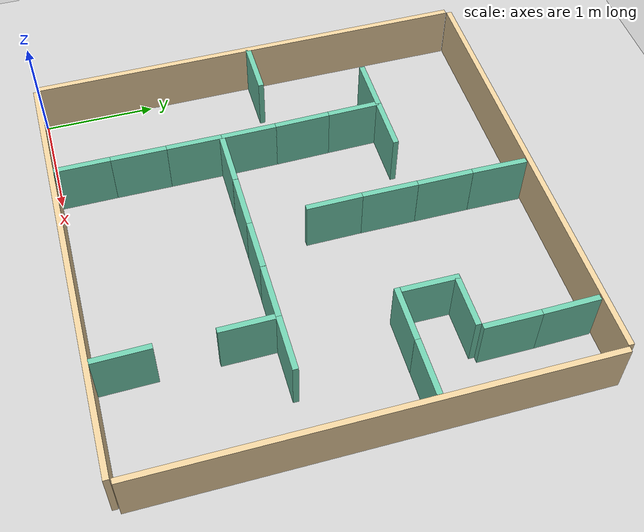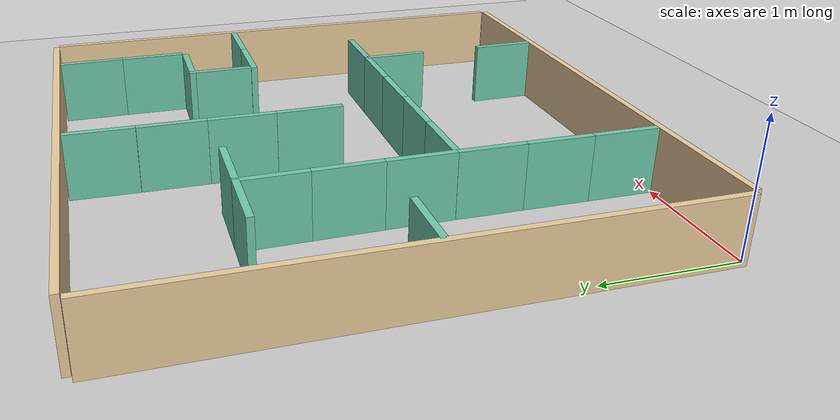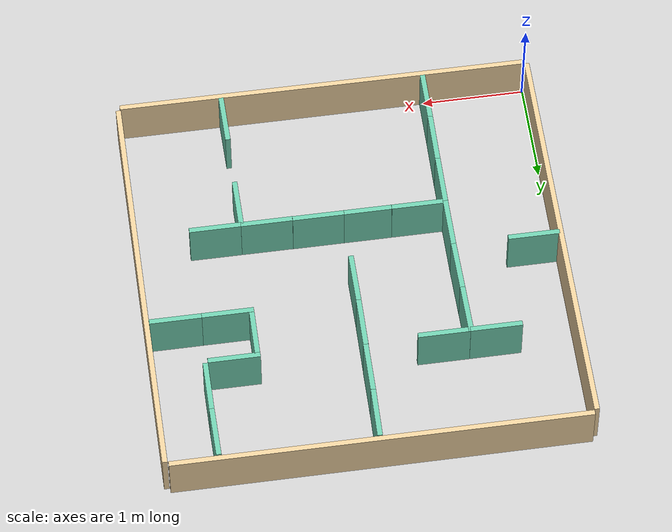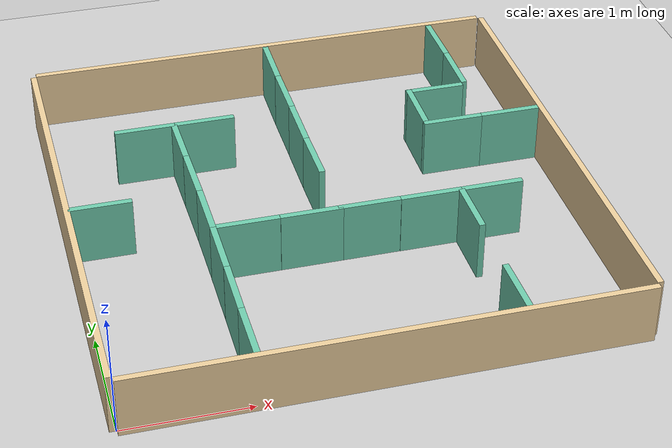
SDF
<sdf version="1.6">
 <world name="default">
  <light name="sun" type="directional">
   <pose>0 0 10 0 -0 0</pose>
   <diffuse>0.8 0.8 0.8 1</diffuse>
   <specular>0.2 0.2 0.2 1</specular>
   <attenuation>
    <range>1000</range>
    <constant>0.9</constant>
    <linear>0.01</linear>
    <quadratic>0.001</quadratic>
   </attenuation>
   <direction>-0.5 0.1 -0.9</direction>
  </light>
  <model name="ground_plane">
   <static>1</static>
   <link name="link">
    <collision name="collision">
     <geometry><plane><normal>0 0 1</normal><size>100 100</size></plane></geometry>
     <surface><friction><ode><mu>100</mu><mu2>50</mu2></ode></friction></surface>
    </collision>
    <visual name="visual">
     <cast_shadows>0</cast_shadows>
     <geometry><plane><normal>0 0 1</normal><size>100 100</size></plane></geometry>
     <material>
      <script><uri>file://media/materials/scripts/gazebo.material</uri><name>Gazebo/Grey</name></script>
     </material>
    </visual>
   </link>
  </model>
  <gravity>0 0 -9.8</gravity>
  <magnetic_field>6e-06 2.3e-05 -4.2e-05</magnetic_field>
  <atmosphere type="adiabatic"/>
  <physics name="default_physics" default="0" type="ode">
   <max_step_size>0.001</max_step_size>
   <real_time_factor>1</real_time_factor>
   <real_time_update_rate>1000</real_time_update_rate>
  </physics>
  <scene><ambient>0.4 0.4 0.4 1</ambient><background>0.7 0.7 0.7 1</background><shadows>1</shadows></scene>
  <audio><device>default</device></audio>
  <spherical_coordinates>
   <surface_model>EARTH_WGS84</surface_model>
   <latitude_deg>0</latitude_deg>
   <longitude_deg>0</longitude_deg>
   <elevation>0</elevation>
   <heading_deg>0</heading_deg>
  </spherical_coordinates>
  <model name="board_4">
   <pose>4.02303 2.01224 0 0 0 -1.57068</pose>
   <link name="Wall_0">
    <collision name="Wall_0_Collision">
     <geometry><box><size>4 0.05 0.5</size></box></geometry>
     <pose>0 0 0.25 0 -0 0</pose>
    </collision>
    <visual name="Wall_0_Visual">
     <pose>0 0 0.25 0 -0 0</pose>
     <geometry><box><size>4 0.05 0.5</size></box></geometry>
     <material>
      <script><uri>file://media/materials/scripts/gazebo.material</uri><name>Gazebo/Grey</name></script>
      <ambient>0.921569 0.807843 0.615686 1</ambient>
     </material>
     <meta><layer>0</layer></meta>
    </visual>
    <pose>-0 0 0 0 -0 3.14159</pose>
   </link>
   <static>1</static>
  </model>
  <model name="board_4_0">
   <pose>-0.030743 2.00303 0 0 -0 1.5729</pose>
   <link name="Wall_0">
    <collision name="Wall_0_Collision">
     <geometry><box><size>4 0.05 0.5</size></box></geometry>
     <pose>0 0 0.25 0 -0 0</pose>
    </collision>
    <visual name="Wall_0_Visual">
     <pose>0 0 0.25 0 -0 0</pose>
     <geometry><box><size>4 0.05 0.5</size></box></geometry>
     <material>
      <script><uri>file://media/materials/scripts/gazebo.material</uri><name>Gazebo/Grey</name></script>
      <ambient>0.921569 0.807843 0.615686 1</ambient>
     </material>
     <meta><layer>0</layer></meta>
    </visual>
    <pose>-0 0 0 0 -0 3.14159</pose>
   </link>
   <static>1</static>
  </model>
  <model name="board_4_1">
   <pose>2.00459 -0.022933 0 0 -0 0</pose>
   <link name="Wall_0">
    <collision name="Wall_0_Collision">
     <geometry><box><size>4 0.05 0.5</size></box></geometry>
     <pose>0 0 0.25 0 -0 0</pose>
    </collision>
    <visual name="Wall_0_Visual">
     <pose>0 0 0.25 0 -0 0</pose>
     <geometry><box><size>4 0.05 0.5</size></box></geometry>
     <material>
      <script><uri>file://media/materials/scripts/gazebo.material</uri><name>Gazebo/Grey</name></script>
      <ambient>0.921569 0.807843 0.615686 1</ambient>
     </material>
     <meta><layer>0</layer></meta>
    </visual>
    <pose>-0 0 0 0 -0 3.14159</pose>
   </link>
   <static>1</static>
  </model>
  <model name="board_4_2">
   <pose>1.99037 4.0343 0 0 -0 0</pose>
   <link name="Wall_0">
    <collision name="Wall_0_Collision">
     <geometry><box><size>4 0.05 0.5</size></box></geometry>
     <pose>0 0 0.25 0 -0 0</pose>
    </collision>
    <visual name="Wall_0_Visual">
     <pose>0 0 0.25 0 -0 0</pose>
     <geometry><box><size>4 0.05 0.5</size></box></geometry>
     <material>
      <script><uri>file://media/materials/scripts/gazebo.material</uri><name>Gazebo/Grey</name></script>
      <ambient>0.921569 0.807843 0.615686 1</ambient>
     </material>
     <meta><layer>0</layer></meta>
    </visual>
    <pose>-0 0 0 0 -0 3.14159</pose>
   </link>
   <static>1</static>
  </model>
  <model name="board_0.5">
   <pose>0.229996 1.99932 0 0 -0 0</pose>
   <link name="Wall_2">
    <collision name="Wall_2_Collision">
     <geometry><box><size>0.5 0.05 0.5</size></box></geometry>
     <pose>0 0 0.25 0 -0 0</pose>
    </collision>
    <visual name="Wall_2_Visual">
     <pose>0 0 0.25 0 -0 0</pose>
     <geometry><box><size>0.5 0.05 0.5</size></box></geometry>
     <material>
      <script><uri>file://media/materials/scripts/gazebo.material</uri><name>Gazebo/Grey</name></script>
      <ambient>0.435294 0.796078 0.67451 1</ambient>
     </material>
     <meta><layer>0</layer></meta>
    </visual>
    <pose>0 0 0 0 -0 3.14159</pose>
   </link>
   <static>1</static>
  </model>
  <model name="board_0.5_0">
   <pose>0.750091 2.97284 0 0 -0 0</pose>
   <link name="Wall_2">
    <collision name="Wall_2_Collision">
     <geometry><box><size>0.5 0.05 0.5</size></box></geometry>
     <pose>0 0 0.25 0 -0 0</pose>
    </collision>
    <visual name="Wall_2_Visual">
     <pose>0 0 0.25 0 -0 0</pose>
     <geometry><box><size>0.5 0.05 0.5</size></box></geometry>
     <material>
      <script><uri>file://media/materials/scripts/gazebo.material</uri><name>Gazebo/Grey</name></script>
      <ambient>0.435294 0.796078 0.67451 1</ambient>
     </material>
     <meta><layer>0</layer></meta>
    </visual>
    <pose>0 0 0 0 -0 3.14159</pose>
   </link>
   <static>1</static>
  </model>
  <model name="board_0.5_1">
   <pose>1.2505 2.97323 0 0 -0 0</pose>
   <link name="Wall_2">
    <collision name="Wall_2_Collision">
     <geometry><box><size>0.5 0.05 0.5</size></box></geometry>
     <pose>0 0 0.25 0 -0 0</pose>
    </collision>
    <visual name="Wall_2_Visual">
     <pose>0 0 0.25 0 -0 0</pose>
     <geometry><box><size>0.5 0.05 0.5</size></box></geometry>
     <material>
      <script><uri>file://media/materials/scripts/gazebo.material</uri><name>Gazebo/Grey</name></script>
      <ambient>0.435294 0.796078 0.67451 1</ambient>
     </material>
     <meta><layer>0</layer></meta>
    </visual>
    <pose>0 0 0 0 -0 3.14159</pose>
   </link>
   <static>1</static>
  </model>
  <model name="board_0.5_2">
   <pose>1.28698 1.50039 0 0 -0 0</pose>
   <link name="Wall_2">
    <collision name="Wall_2_Collision">
     <geometry><box><size>0.5 0.05 0.5</size></box></geometry>
     <pose>0 0 0.25 0 -0 0</pose>
    </collision>
    <visual name="Wall_2_Visual">
     <pose>0 0 0.25 0 -0 0</pose>
     <geometry><box><size>0.5 0.05 0.5</size></box></geometry>
     <material>
      <script><uri>file://media/materials/scripts/gazebo.material</uri><name>Gazebo/Grey</name></script>
      <ambient>0.435294 0.796078 0.67451 1</ambient>
     </material>
     <meta><layer>0</layer></meta>
    </visual>
    <pose>0 0 0 0 -0 3.14159</pose>
   </link>
   <static>1</static>
  </model>
  <model name="board_0.5_3">
   <pose>1.78802 1.50056 0 0 -0 0</pose>
   <link name="Wall_2">
    <collision name="Wall_2_Collision">
     <geometry><box><size>0.5 0.05 0.5</size></box></geometry>
     <pose>0 0 0.25 0 -0 0</pose>
    </collision>
    <visual name="Wall_2_Visual">
     <pose>0 0 0.25 0 -0 0</pose>
     <geometry><box><size>0.5 0.05 0.5</size></box></geometry>
     <material>
      <script><uri>file://media/materials/scripts/gazebo.material</uri><name>Gazebo/Grey</name></script>
      <ambient>0.435294 0.796078 0.67451 1</ambient>
     </material>
     <meta><layer>0</layer></meta>
    </visual>
    <pose>0 0 0 0 -0 3.14159</pose>
   </link>
   <static>1</static>
  </model>
  <model name="board_0.5_4">
   <pose>2.25067 1.50056 0 0 -0 0</pose>
   <link name="Wall_2">
    <collision name="Wall_2_Collision">
     <geometry><box><size>0.5 0.05 0.5</size></box></geometry>
     <pose>0 0 0.25 0 -0 0</pose>
    </collision>
    <visual name="Wall_2_Visual">
     <pose>0 0 0.25 0 -0 0</pose>
     <geometry><box><size>0.5 0.05 0.5</size></box></geometry>
     <material>
      <script><uri>file://media/materials/scripts/gazebo.material</uri><name>Gazebo/Grey</name></script>
      <ambient>0.435294 0.796078 0.67451 1</ambient>
     </material>
     <meta><layer>0</layer></meta>
    </visual>
    <pose>0 0 0 0 -0 3.14159</pose>
   </link>
   <static>1</static>
  </model>
  <model name="board_0.5_5">
   <pose>2.752 1.49912 0 0 -0 0</pose>
   <link name="Wall_2">
    <collision name="Wall_2_Collision">
     <geometry><box><size>0.5 0.05 0.5</size></box></geometry>
     <pose>0 0 0.25 0 -0 0</pose>
    </collision>
    <visual name="Wall_2_Visual">
     <pose>0 0 0.25 0 -0 0</pose>
     <geometry><box><size>0.5 0.05 0.5</size></box></geometry>
     <material>
      <script><uri>file://media/materials/scripts/gazebo.material</uri><name>Gazebo/Grey</name></script>
      <ambient>0.435294 0.796078 0.67451 1</ambient>
     </material>
     <meta><layer>0</layer></meta>
    </visual>
    <pose>0 0 0 0 -0 3.14159</pose>
   </link>
   <static>1</static>
  </model>
  <model name="board_0.5_6">
   <pose>3.25099 1.49857 0 0 -0 0</pose>
   <link name="Wall_2">
    <collision name="Wall_2_Collision">
     <geometry><box><size>0.5 0.05 0.5</size></box></geometry>
     <pose>0 0 0.25 0 -0 0</pose>
    </collision>
    <visual name="Wall_2_Visual">
     <pose>0 0 0.25 0 -0 0</pose>
     <geometry><box><size>0.5 0.05 0.5</size></box></geometry>
     <material>
      <script><uri>file://media/materials/scripts/gazebo.material</uri><name>Gazebo/Grey</name></script>
      <ambient>0.435294 0.796078 0.67451 1</ambient>
     </material>
     <meta><layer>0</layer></meta>
    </visual>
    <pose>0 0 0 0 -0 3.14159</pose>
   </link>
   <static>1</static>
  </model>
  <model name="board_0.5_7">
   <pose>3.74679 2.47212 0 0 -0 0</pose>
   <link name="Wall_2">
    <collision name="Wall_2_Collision">
     <geometry><box><size>0.5 0.05 0.5</size></box></geometry>
     <pose>0 0 0.25 0 -0 0</pose>
    </collision>
    <visual name="Wall_2_Visual">
     <pose>0 0 0.25 0 -0 0</pose>
     <geometry><box><size>0.5 0.05 0.5</size></box></geometry>
     <material>
      <script><uri>file://media/materials/scripts/gazebo.material</uri><name>Gazebo/Grey</name></script>
      <ambient>0.435294 0.796078 0.67451 1</ambient>
     </material>
     <meta><layer>0</layer></meta>
    </visual>
    <pose>0 0 0 0 -0 3.14159</pose>
   </link>
   <static>1</static>
  </model>
  <model name="board_0.5_8">
   <pose>3.24732 2.47164 0 0 -0 0</pose>
   <link name="Wall_2">
    <collision name="Wall_2_Collision">
     <geometry><box><size>0.5 0.05 0.5</size></box></geometry>
     <pose>0 0 0.25 0 -0 0</pose>
    </collision>
    <visual name="Wall_2_Visual">
     <pose>0 0 0.25 0 -0 0</pose>
     <geometry><box><size>0.5 0.05 0.5</size></box></geometry>
     <material>
      <script><uri>file://media/materials/scripts/gazebo.material</uri><name>Gazebo/Grey</name></script>
      <ambient>0.435294 0.796078 0.67451 1</ambient>
     </material>
     <meta><layer>0</layer></meta>
    </visual>
    <pose>0 0 0 0 -0 3.14159</pose>
   </link>
   <static>1</static>
  </model>
  <model name="board_0.5_9">
   <pose>3.52139 3.74836 0 0 0 -1.55737</pose>
   <link name="Wall_2">
    <collision name="Wall_2_Collision">
     <geometry><box><size>0.5 0.05 0.5</size></box></geometry>
     <pose>0 0 0.25 0 -0 0</pose>
    </collision>
    <visual name="Wall_2_Visual">
     <pose>0 0 0.25 0 -0 0</pose>
     <geometry><box><size>0.5 0.05 0.5</size></box></geometry>
     <material>
      <script><uri>file://media/materials/scripts/gazebo.material</uri><name>Gazebo/Grey</name></script>
      <ambient>0.435294 0.796078 0.67451 1</ambient>
     </material>
     <meta><layer>0</layer></meta>
    </visual>
    <pose>0 0 0 0 -0 3.14159</pose>
   </link>
   <static>1</static>
  </model>
  <model name="board_0.5_10">
   <pose>3.52459 3.24922 0 0 -0 1.57002</pose>
   <link name="Wall_2">
    <collision name="Wall_2_Collision">
     <geometry><box><size>0.5 0.05 0.5</size></box></geometry>
     <pose>0 0 0.25 0 -0 0</pose>
    </collision>
    <visual name="Wall_2_Visual">
     <pose>0 0 0.25 0 -0 0</pose>
     <geometry><box><size>0.5 0.05 0.5</size></box></geometry>
     <material>
      <script><uri>file://media/materials/scripts/gazebo.material</uri><name>Gazebo/Grey</name></script>
      <ambient>0.435294 0.796078 0.67451 1</ambient>
     </material>
     <meta><layer>0</layer></meta>
    </visual>
    <pose>0 0 0 0 -0 3.14159</pose>
   </link>
   <static>1</static>
  </model>
  <model name="board_0.5_11">
   <pose>3.0233 2.74734 0 0 0 -1.57682</pose>
   <link name="Wall_2">
    <collision name="Wall_2_Collision">
     <geometry><box><size>0.5 0.05 0.5</size></box></geometry>
     <pose>0 0 0.25 0 -0 0</pose>
    </collision>
    <visual name="Wall_2_Visual">
     <pose>0 0 0.25 0 -0 0</pose>
     <geometry><box><size>0.5 0.05 0.5</size></box></geometry>
     <material>
      <script><uri>file://media/materials/scripts/gazebo.material</uri><name>Gazebo/Grey</name></script>
      <ambient>0.435294 0.796078 0.67451 1</ambient>
     </material>
     <meta><layer>0</layer></meta>
    </visual>
    <pose>0 0 0 0 -0 3.14159</pose>
   </link>
   <static>1</static>
  </model>
  <model name="board_0.5_12">
   <pose>2.00634 3.75134 0 0 0 -1.58477</pose>
   <link name="Wall_2">
    <collision name="Wall_2_Collision">
     <geometry><box><size>0.5 0.05 0.5</size></box></geometry>
     <pose>0 0 0.25 0 -0 0</pose>
    </collision>
    <visual name="Wall_2_Visual">
     <pose>0 0 0.25 0 -0 0</pose>
     <geometry><box><size>0.5 0.05 0.5</size></box></geometry>
     <material>
      <script><uri>file://media/materials/scripts/gazebo.material</uri><name>Gazebo/Grey</name></script>
      <ambient>0.435294 0.796078 0.67451 1</ambient>
     </material>
     <meta><layer>0</layer></meta>
    </visual>
    <pose>0 0 0 0 -0 3.14159</pose>
   </link>
   <static>1</static>
  </model>
  <model name="board_0.5_13">
   <pose>2.0026 3.25075 0 0 0 -1.57169</pose>
   <link name="Wall_2">
    <collision name="Wall_2_Collision">
     <geometry><box><size>0.5 0.05 0.5</size></box></geometry>
     <pose>0 0 0.25 0 -0 0</pose>
    </collision>
    <visual name="Wall_2_Visual">
     <pose>0 0 0.25 0 -0 0</pose>
     <geometry><box><size>0.5 0.05 0.5</size></box></geometry>
     <material>
      <script><uri>file://media/materials/scripts/gazebo.material</uri><name>Gazebo/Grey</name></script>
      <ambient>0.435294 0.796078 0.67451 1</ambient>
     </material>
     <meta><layer>0</layer></meta>
    </visual>
    <pose>0 0 0 0 -0 3.14159</pose>
   </link>
   <static>1</static>
  </model>
  <model name="board_0.5_14">
   <pose>2.00039 2.75116 0 0 0 -1.57382</pose>
   <link name="Wall_2">
    <collision name="Wall_2_Collision">
     <geometry><box><size>0.5 0.05 0.5</size></box></geometry>
     <pose>0 0 0.25 0 -0 0</pose>
    </collision>
    <visual name="Wall_2_Visual">
     <pose>0 0 0.25 0 -0 0</pose>
     <geometry><box><size>0.5 0.05 0.5</size></box></geometry>
     <material>
      <script><uri>file://media/materials/scripts/gazebo.material</uri><name>Gazebo/Grey</name></script>
      <ambient>0.435294 0.796078 0.67451 1</ambient>
     </material>
     <meta><layer>0</layer></meta>
    </visual>
    <pose>0 0 0 0 -0 3.14159</pose>
   </link>
   <static>1</static>
  </model>
  <model name="board_0.5_15">
   <pose>2.00141 2.25136 0 0 0 -1.56128</pose>
   <link name="Wall_2">
    <collision name="Wall_2_Collision">
     <geometry><box><size>0.5 0.05 0.5</size></box></geometry>
     <pose>0 0 0.25 0 -0 0</pose>
    </collision>
    <visual name="Wall_2_Visual">
     <pose>0 0 0.25 0 -0 0</pose>
     <geometry><box><size>0.5 0.05 0.5</size></box></geometry>
     <material>
      <script><uri>file://media/materials/scripts/gazebo.material</uri><name>Gazebo/Grey</name></script>
      <ambient>0.435294 0.796078 0.67451 1</ambient>
     </material>
     <meta><layer>0</layer></meta>
    </visual>
    <pose>0 0 0 0 -0 3.14159</pose>
   </link>
   <static>1</static>
  </model>
  <model name="board_0.5_16">
   <pose>2.9982 1.25146 0 0 0 -1.56373</pose>
   <link name="Wall_2">
    <collision name="Wall_2_Collision">
     <geometry><box><size>0.5 0.05 0.5</size></box></geometry>
     <pose>0 0 0.25 0 -0 0</pose>
    </collision>
    <visual name="Wall_2_Visual">
     <pose>0 0 0.25 0 -0 0</pose>
     <geometry><box><size>0.5 0.05 0.5</size></box></geometry>
     <material>
      <script><uri>file://media/materials/scripts/gazebo.material</uri><name>Gazebo/Grey</name></script>
      <ambient>0.435294 0.796078 0.67451 1</ambient>
     </material>
     <meta><layer>0</layer></meta>
    </visual>
    <pose>0 0 0 0 -0 3.14159</pose>
   </link>
   <static>1</static>
  </model>
  <model name="board_0.5_17">
   <pose>3.00588 0.249704 0 0 0 -1.55551</pose>
   <link name="Wall_2">
    <collision name="Wall_2_Collision">
     <geometry><box><size>0.5 0.05 0.5</size></box></geometry>
     <pose>0 0 0.25 0 -0 0</pose>
    </collision>
    <visual name="Wall_2_Visual">
     <pose>0 0 0.25 0 -0 0</pose>
     <geometry><box><size>0.5 0.05 0.5</size></box></geometry>
     <material>
      <script><uri>file://media/materials/scripts/gazebo.material</uri><name>Gazebo/Grey</name></script>
      <ambient>0.435294 0.796078 0.67451 1</ambient>
     </material>
     <meta><layer>0</layer></meta>
    </visual>
    <pose>0 0 0 0 -0 3.14159</pose>
   </link>
   <static>1</static>
  </model>
  <model name="board_0.5_18">
   <pose>0.996582 2.74492 0 0 0 -1.55357</pose>
   <link name="Wall_2">
    <collision name="Wall_2_Collision">
     <geometry><box><size>0.5 0.05 0.5</size></box></geometry>
     <pose>0 0 0.25 0 -0 0</pose>
    </collision>
    <visual name="Wall_2_Visual">
     <pose>0 0 0.25 0 -0 0</pose>
     <geometry><box><size>0.5 0.05 0.5</size></box></geometry>
     <material>
      <script><uri>file://media/materials/scripts/gazebo.material</uri><name>Gazebo/Grey</name></script>
      <ambient>0.435294 0.796078 0.67451 1</ambient>
     </material>
     <meta><layer>0</layer></meta>
    </visual>
    <pose>0 0 0 0 -0 3.14159</pose>
   </link>
   <static>1</static>
  </model>
  <model name="board_0.5_19">
   <pose>1.00592 2.2457 0 0 0 -1.55192</pose>
   <link name="Wall_2">
    <collision name="Wall_2_Collision">
     <geometry><box><size>0.5 0.05 0.5</size></box></geometry>
     <pose>0 0 0.25 0 -0 0</pose>
    </collision>
    <visual name="Wall_2_Visual">
     <pose>0 0 0.25 0 -0 0</pose>
     <geometry><box><size>0.5 0.05 0.5</size></box></geometry>
     <material>
      <script><uri>file://media/materials/scripts/gazebo.material</uri><name>Gazebo/Grey</name></script>
      <ambient>0.435294 0.796078 0.67451 1</ambient>
     </material>
     <meta><layer>0</layer></meta>
    </visual>
    <pose>0 0 0 0 -0 3.14159</pose>
   </link>
   <static>1</static>
  </model>
  <model name="board_0.5_20">
   <pose>1.01204 1.74805 0 0 0 -1.56511</pose>
   <link name="Wall_2">
    <collision name="Wall_2_Collision">
     <geometry><box><size>0.5 0.05 0.5</size></box></geometry>
     <pose>0 0 0.25 0 -0 0</pose>
    </collision>
    <visual name="Wall_2_Visual">
     <pose>0 0 0.25 0 -0 0</pose>
     <geometry><box><size>0.5 0.05 0.5</size></box></geometry>
     <material>
      <script><uri>file://media/materials/scripts/gazebo.material</uri><name>Gazebo/Grey</name></script>
      <ambient>0.435294 0.796078 0.67451 1</ambient>
     </material>
     <meta><layer>0</layer></meta>
    </visual>
    <pose>0 0 0 0 -0 3.14159</pose>
   </link>
   <static>1</static>
  </model>
  <model name="board_0.5_21">
   <pose>1.01245 1.24839 0 0 0 -1.57151</pose>
   <link name="Wall_2">
    <collision name="Wall_2_Collision">
     <geometry><box><size>0.5 0.05 0.5</size></box></geometry>
     <pose>0 0 0.25 0 -0 0</pose>
    </collision>
    <visual name="Wall_2_Visual">
     <pose>0 0 0.25 0 -0 0</pose>
     <geometry><box><size>0.5 0.05 0.5</size></box></geometry>
     <material>
      <script><uri>file://media/materials/scripts/gazebo.material</uri><name>Gazebo/Grey</name></script>
      <ambient>0.435294 0.796078 0.67451 1</ambient>
     </material>
     <meta><layer>0</layer></meta>
    </visual>
    <pose>0 0 0 0 -0 3.14159</pose>
   </link>
   <static>1</static>
  </model>
  <model name="board_0.5_22">
   <pose>1.01152 0.74971 0 0 -0 1.56585</pose>
   <link name="Wall_2">
    <collision name="Wall_2_Collision">
     <geometry><box><size>0.5 0.05 0.5</size></box></geometry>
     <pose>0 0 0.25 0 -0 0</pose>
    </collision>
    <visual name="Wall_2_Visual">
     <pose>0 0 0.25 0 -0 0</pose>
     <geometry><box><size>0.5 0.05 0.5</size></box></geometry>
     <material>
      <script><uri>file://media/materials/scripts/gazebo.material</uri><name>Gazebo/Grey</name></script>
      <ambient>0.435294 0.796078 0.67451 1</ambient>
     </material>
     <meta><layer>0</layer></meta>
    </visual>
    <pose>0 0 0 0 -0 3.14159</pose>
   </link>
   <static>1</static>
  </model>
  <model name="board_0.5_23">
   <pose>1.01067 0.250938 0 0 0 -1.56878</pose>
   <link name="Wall_2">
    <collision name="Wall_2_Collision">
     <geometry><box><size>0.5 0.05 0.5</size></box></geometry>
     <pose>0 0 0.25 0 -0 0</pose>
    </collision>
    <visual name="Wall_2_Visual">
     <pose>0 0 0.25 0 -0 0</pose>
     <geometry><box><size>0.5 0.05 0.5</size></box></geometry>
     <material>
      <script><uri>file://media/materials/scripts/gazebo.material</uri><name>Gazebo/Grey</name></script>
      <ambient>0.435294 0.796078 0.67451 1</ambient>
     </material>
     <meta><layer>0</layer></meta>
    </visual>
    <pose>0 0 0 0 -0 3.14159</pose>
   </link>
   <static>1</static>
  </model>
  <model name="board_0.5_24">
   <pose>3.24886 2.97433 0 0 -0 0</pose>
   <link name="Wall_2">
    <collision name="Wall_2_Collision">
     <geometry><box><size>0.5 0.05 0.5</size></box></geometry>
     <pose>0 0 0.25 0 -0 0</pose>
    </collision>
    <visual name="Wall_2_Visual">
     <pose>0 0 0.25 0 -0 0</pose>
     <geometry><box><size>0.5 0.05 0.5</size></box></geometry>
     <material>
      <script><uri>file://media/materials/scripts/gazebo.material</uri><name>Gazebo/Grey</name></script>
      <ambient>0.435294 0.796078 0.67451 1</ambient>
     </material>
     <meta><layer>0</layer></meta>
    </visual>
    <pose>0 0 0 0 -0 3.14159</pose>
   </link>
   <static>1</static>
  </model>
 </world>
</sdf>
